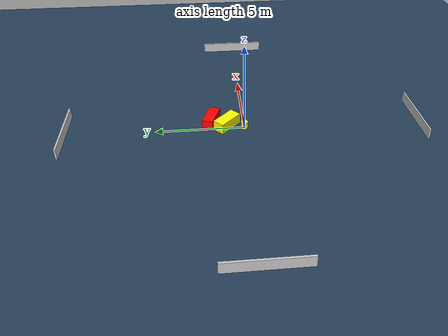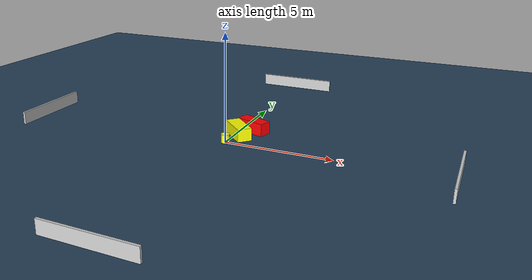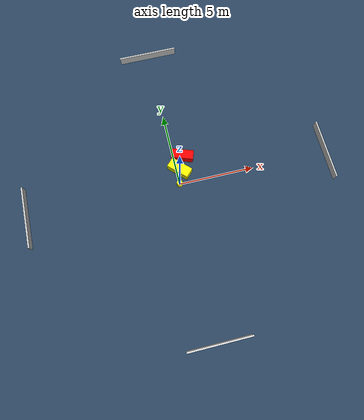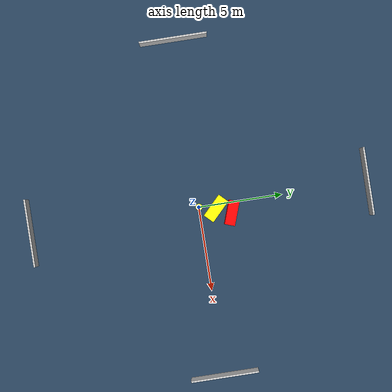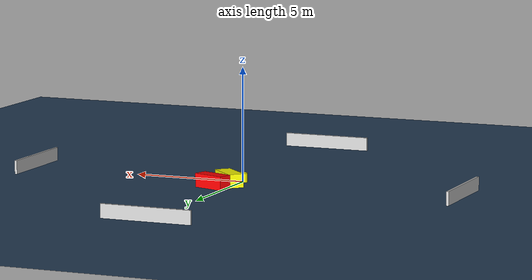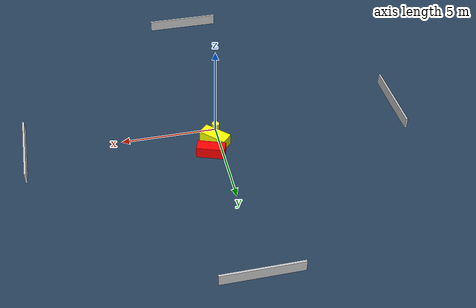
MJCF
<?xml version="1.0" ?>
<mujoco model="generated_environment">
  <option timestep="0.01" integrator="RK4" cone="elliptic"/>
  <default>
    <geom density="1"/>
  </default>
  <asset>
    <texture builtin="gradient" height="3072" name="skybox" rgb1="0.3 0.5 0.7" rgb2="0 0 0" type="skybox" width="512"/>
    <texture builtin="checker" height="300" name="groundplane" rgb1="0.2 0.3 0.4" rgb2="0.1 0.2 0.3" type="2d" width="300"/>
    <material name="groundplane" reflectance="0.2" texrepeat="5 5" texture="groundplane"/>
  </asset>
  <worldbody>
    <light dir="0 0 -1" directional="true" pos="0 0 1.5"/>
    <geom condim="3" friction="0.5 0.005 0.001" material="groundplane" name="floor" pos="0 0 0" size="0 0 0.05" type="plane"/>
    <body name="walls">
      <geom name="wall_1" condim="4" pos="-10.0 0.0 0.3" rgba="0.800000011920929 0.800000011920929 0.800000011920929 1.0" size="0.05 2.0 0.3" type="box"/>
      <geom name="wall_2" condim="4" pos="10.0 0.0 0.3" rgba="0.800000011920929 0.800000011920929 0.800000011920929 1.0" size="0.05 2.0 0.3" type="box"/>
      <geom name="wall_3" condim="4" pos="0.0 -10.0 0.3" rgba="0.800000011920929 0.800000011920929 0.800000011920929 1.0" size="2.0 0.05 0.3" type="box"/>
      <geom name="wall_4" condim="4" pos="0.0 10.0 0.3" rgba="0.800000011920929 0.800000011920929 0.800000011920929 1.0" size="2.0 0.05 0.3" type="box"/>
    </body>
    <body name="robot">
      <joint name="joint_x" type="slide" pos="0 0 0" axis="1 0 0"/>
      <joint name="joint_y" type="slide" pos="0 0 0" axis="0 1 0"/>
      <geom name="robot" type="cylinder" pos="0.0 0.0 0.2" size="0.2 0.2 0.0" mass="5.0" friction="1.0 0.005 0.0001" condim="4" rgba="1.0 1.0 0.0 1.0"/>
    </body>
    <body name="obstacle_1_movable">
      <geom name="obstacle_1_movable" condim="4" pos="0.22720352143493153 0.9689368520574316 0.3" euler="0 0 315.74522109168674" friction="0.0 0.005 0.001" rgba="1.0 1.0 0.0 1.0" size="0.7550182130864207 0.34194295356576665 0.3" type="box" mass="0.1"/>
      <joint type="free"/>
    </body>
    <body name="obstacle_2_static">
      <geom name="obstacle_2_static" condim="4" pos="0.6200295367738848 1.8502560697716204 0.3" euler="0 0 250.58139121399915" friction="0.0 0.005 0.001" rgba="1.0 0.0 0.0 1.0" size="0.3078333373794207 0.7280510619300817 0.3" type="box"/>
    </body>
  </worldbody>
  <actuator>
    <motor name="actuator_x" joint="joint_x" gear="1" ctrlrange="-1 1"/>
    <motor name="actuator_y" joint="joint_y" gear="1" ctrlrange="-1 1"/>
  </actuator>
</mujoco>
